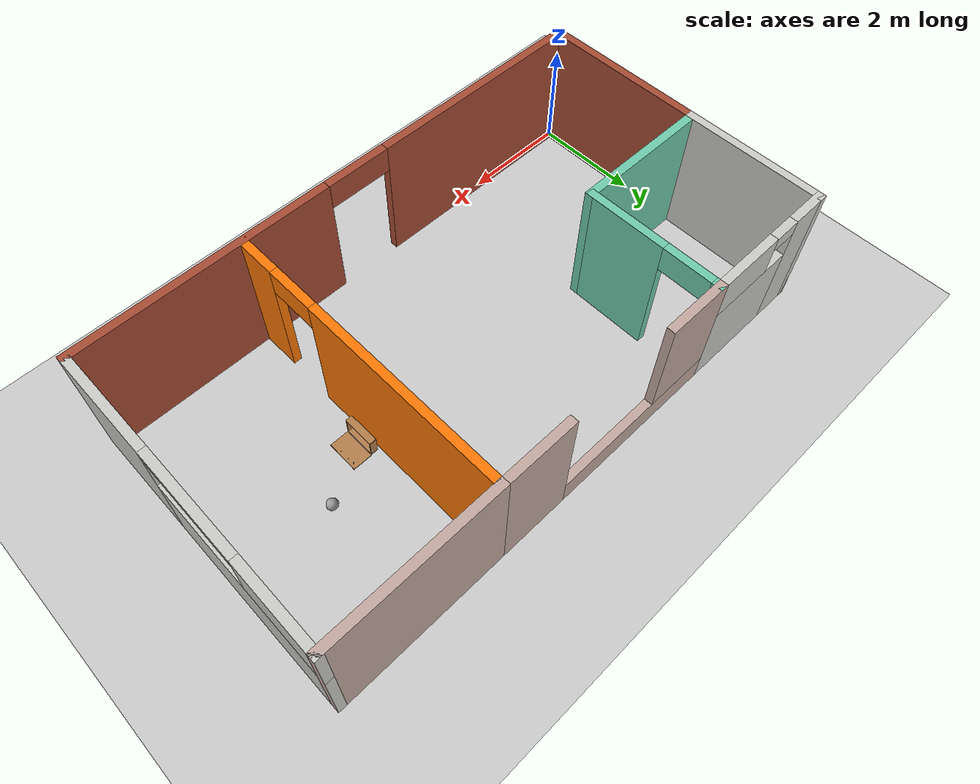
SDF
<sdf version="1.6">
 <world name="default">
  <model name="ground_plane">
   <static>1</static>
   <link name="link">
    <collision name="collision">
     <geometry><plane><normal>0 0 1</normal><size>100 100</size></plane></geometry>
     <surface><friction><ode><mu>100</mu><mu2>50</mu2></ode></friction></surface>
    </collision>
    <visual name="visual">
     <cast_shadows>0</cast_shadows>
     <geometry><plane><normal>0 0 1</normal><size>100 100</size></plane></geometry>
     <material>
      <script><uri>file://media/materials/scripts/gazebo.material</uri><name>Gazebo/Grey</name></script>
     </material>
    </visual>
   </link>
  </model>
  <model name="casa">
   <pose>5 2.75 0 0 -0 0</pose>
   <link name="Wall_29">
    <collision name="Wall_29_Collision">
     <geometry><box><size>3.15 0.15 2.5</size></box></geometry>
     <pose>0 0 1.25 0 -0 0</pose>
    </collision>
    <visual name="Wall_29_Visual">
     <pose>0 0 1.25 0 -0 0</pose>
     <geometry><box><size>3.15 0.15 2.5</size></box></geometry>
     <material>
      <script><uri>file://media/materials/scripts/gazebo.material</uri><name>Gazebo/Bricks</name></script>
      <ambient>1 1 1 1</ambient>
     </material>
     <meta><layer>0</layer></meta>
    </visual>
    <pose>-5 -1.25 0 0 -0 1.5708</pose>
   </link>
   <link name="Wall_31">
    <collision name="Wall_31_Collision">
     <geometry><box><size>2.65 0.15 2.5</size></box></geometry>
     <pose>0 0 1.25 0 -0 0</pose>
    </collision>
    <visual name="Wall_31_Visual">
     <pose>0 0 1.25 0 -0 0</pose>
     <geometry><box><size>2.65 0.15 2.5</size></box></geometry>
     <material>
      <script><uri>file://media/materials/scripts/gazebo.material</uri><name>Gazebo/CeilingTiled</name></script>
      <ambient>1 1 1 1</ambient>
     </material>
     <meta><layer>0</layer></meta>
    </visual>
    <pose>-5 1.5 0 0 -0 1.5708</pose>
   </link>
   <link name="Wall_33">
    <pose>-3.75 2.75 0 0 -0 0</pose>
    <visual name="Wall_33_Visual_0">
     <pose>-0.942604 0 1.25 0 -0 0</pose>
     <geometry><box><size>0.764791 0.15 2.5</size></box></geometry>
     <material>
      <script><uri>file://media/materials/scripts/gazebo.material</uri><name>Gazebo/CeilingTiled</name></script>
      <ambient>1 1 1 1</ambient>
     </material>
     <meta><layer>0</layer></meta>
    </visual>
    <collision name="Wall_33_Collision_0">
     <geometry><box><size>0.764791 0.15 2.5</size></box></geometry>
     <pose>-0.942604 0 1.25 0 -0 0</pose>
    </collision>
    <visual name="Wall_33_Visual_1">
     <pose>0.382396 0 0.85 0 -0 0</pose>
     <geometry><box><size>1.88521 0.15 1.7</size></box></geometry>
     <material>
      <script><uri>file://media/materials/scripts/gazebo.material</uri><name>Gazebo/CeilingTiled</name></script>
      <ambient>1 1 1 1</ambient>
     </material>
     <meta><layer>0</layer></meta>
    </visual>
    <collision name="Wall_33_Collision_1">
     <geometry><box><size>1.88521 0.15 1.7</size></box></geometry>
     <pose>0.382396 0 0.85 0 -0 0</pose>
    </collision>
    <visual name="Wall_33_Visual_2">
     <pose>0.632396 0 2.1 0 -0 0</pose>
     <geometry><box><size>1.38521 0.15 0.8</size></box></geometry>
     <material>
      <script><uri>file://media/materials/scripts/gazebo.material</uri><name>Gazebo/CeilingTiled</name></script>
      <ambient>1 1 1 1</ambient>
     </material>
     <meta><layer>0</layer></meta>
    </visual>
    <collision name="Wall_33_Collision_2">
     <geometry><box><size>1.38521 0.15 0.8</size></box></geometry>
     <pose>0.632396 0 2.1 0 -0 0</pose>
    </collision>
    <visual name="Wall_33_Visual_3">
     <pose>-0.310209 0 2.35 0 -0 0</pose>
     <geometry><box><size>0.5 0.15 0.3</size></box></geometry>
     <material>
      <script><uri>file://media/materials/scripts/gazebo.material</uri><name>Gazebo/CeilingTiled</name></script>
      <ambient>1 1 1 1</ambient>
     </material>
     <meta><layer>0</layer></meta>
    </visual>
    <collision name="Wall_33_Collision_3">
     <geometry><box><size>0.5 0.15 0.3</size></box></geometry>
     <pose>-0.310209 0 2.35 0 -0 0</pose>
    </collision>
   </link>
   <link name="Wall_35">
    <pose>-2.5 1.5 0 0 0 -1.5708</pose>
    <visual name="Wall_35_Visual_0">
     <pose>-1.22797 0 1.25 0 -0 0</pose>
     <geometry><box><size>0.194069 0.15 2.5</size></box></geometry>
     <material>
      <script><uri>file://media/materials/scripts/gazebo.material</uri><name>Gazebo/Grey</name></script>
      <ambient>0.435294 0.796078 0.67451 1</ambient>
     </material>
     <meta><layer>0</layer></meta>
    </visual>
    <collision name="Wall_35_Collision_0">
     <geometry><box><size>0.194069 0.15 2.5</size></box></geometry>
     <pose>-1.22797 0 1.25 0 -0 0</pose>
    </collision>
    <visual name="Wall_35_Visual_1">
     <pose>0.547034 0 1.25 0 -0 0</pose>
     <geometry><box><size>1.55593 0.15 2.5</size></box></geometry>
     <material>
      <script><uri>file://media/materials/scripts/gazebo.material</uri><name>Gazebo/Grey</name></script>
      <ambient>0.435294 0.796078 0.67451 1</ambient>
     </material>
     <meta><layer>0</layer></meta>
    </visual>
    <collision name="Wall_35_Collision_1">
     <geometry><box><size>1.55593 0.15 2.5</size></box></geometry>
     <pose>0.547034 0 1.25 0 -0 0</pose>
    </collision>
    <visual name="Wall_35_Visual_2">
     <pose>-0.680931 0 2.25 0 -0 0</pose>
     <geometry><box><size>0.9 0.15 0.5</size></box></geometry>
     <material>
      <script><uri>file://media/materials/scripts/gazebo.material</uri><name>Gazebo/Grey</name></script>
      <ambient>0.435294 0.796078 0.67451 1</ambient>
     </material>
     <meta><layer>0</layer></meta>
    </visual>
    <collision name="Wall_35_Collision_2">
     <geometry><box><size>0.9 0.15 0.5</size></box></geometry>
     <pose>-0.680931 0 2.25 0 -0 0</pose>
    </collision>
   </link>
   <link name="Wall_37">
    <collision name="Wall_37_Collision">
     <geometry><box><size>2.65 0.15 2.5</size></box></geometry>
     <pose>0 0 1.25 0 -0 0</pose>
    </collision>
    <visual name="Wall_37_Visual">
     <pose>0 0 1.25 0 -0 0</pose>
     <geometry><box><size>2.65 0.15 2.5</size></box></geometry>
     <material>
      <script><uri>file://media/materials/scripts/gazebo.material</uri><name>Gazebo/Grey</name></script>
      <ambient>0.435294 0.796078 0.67451 1</ambient>
     </material>
     <meta><layer>0</layer></meta>
    </visual>
    <pose>-3.75 0.25 0 0 -0 0</pose>
   </link>
   <link name="Wall_39">
    <pose>0 -2.75 0 0 -0 0</pose>
    <visual name="Wall_39_Visual_0">
     <pose>-2.95244 0 1.25 0 -0 0</pose>
     <geometry><box><size>4.24512 0.15 2.5</size></box></geometry>
     <material>
      <script><uri>file://media/materials/scripts/gazebo.material</uri><name>Gazebo/Bricks</name></script>
      <ambient>1 1 1 1</ambient>
     </material>
     <meta><layer>0</layer></meta>
    </visual>
    <collision name="Wall_39_Collision_0">
     <geometry><box><size>4.24512 0.15 2.5</size></box></geometry>
     <pose>-2.95244 0 1.25 0 -0 0</pose>
    </collision>
    <visual name="Wall_39_Visual_1">
     <pose>2.72256 0 1.25 0 -0 0</pose>
     <geometry><box><size>4.70488 0.15 2.5</size></box></geometry>
     <material>
      <script><uri>file://media/materials/scripts/gazebo.material</uri><name>Gazebo/Bricks</name></script>
      <ambient>1 1 1 1</ambient>
     </material>
     <meta><layer>0</layer></meta>
    </visual>
    <collision name="Wall_39_Collision_1">
     <geometry><box><size>4.70488 0.15 2.5</size></box></geometry>
     <pose>2.72256 0 1.25 0 -0 0</pose>
    </collision>
    <visual name="Wall_39_Visual_2">
     <pose>-0.229885 0 2.25 0 -0 0</pose>
     <geometry><box><size>1.2 0.15 0.5</size></box></geometry>
     <material>
      <script><uri>file://media/materials/scripts/gazebo.material</uri><name>Gazebo/Bricks</name></script>
      <ambient>1 1 1 1</ambient>
     </material>
     <meta><layer>0</layer></meta>
    </visual>
    <collision name="Wall_39_Collision_2">
     <geometry><box><size>1.2 0.15 0.5</size></box></geometry>
     <pose>-0.229885 0 2.25 0 -0 0</pose>
    </collision>
   </link>
   <link name="Wall_41">
    <pose>5 0 0 0 -0 1.5708</pose>
    <visual name="Wall_41_Visual_0">
     <pose>-1.81897 0 1.25 0 -0 0</pose>
     <geometry><box><size>2.01206 0.15 2.5</size></box></geometry>
     <material>
      <script><uri>file://media/materials/scripts/gazebo.material</uri><name>Gazebo/CeilingTiled</name></script>
      <ambient>1 1 1 1</ambient>
     </material>
     <meta><layer>0</layer></meta>
    </visual>
    <collision name="Wall_41_Collision_0">
     <geometry><box><size>2.01206 0.15 2.5</size></box></geometry>
     <pose>-1.81897 0 1.25 0 -0 0</pose>
    </collision>
    <visual name="Wall_41_Visual_1">
     <pose>1.00603 0 0.75 0 -0 0</pose>
     <geometry><box><size>3.63794 0.15 1.5</size></box></geometry>
     <material>
      <script><uri>file://media/materials/scripts/gazebo.material</uri><name>Gazebo/CeilingTiled</name></script>
      <ambient>1 1 1 1</ambient>
     </material>
     <meta><layer>0</layer></meta>
    </visual>
    <collision name="Wall_41_Collision_1">
     <geometry><box><size>3.63794 0.15 1.5</size></box></geometry>
     <pose>1.00603 0 0.75 0 -0 0</pose>
    </collision>
    <visual name="Wall_41_Visual_2">
     <pose>2.00603 0 2 0 -0 0</pose>
     <geometry><box><size>1.63794 0.15 1</size></box></geometry>
     <material>
      <script><uri>file://media/materials/scripts/gazebo.material</uri><name>Gazebo/CeilingTiled</name></script>
      <ambient>1 1 1 1</ambient>
     </material>
     <meta><layer>0</layer></meta>
    </visual>
    <collision name="Wall_41_Collision_2">
     <geometry><box><size>1.63794 0.15 1</size></box></geometry>
     <pose>2.00603 0 2 0 -0 0</pose>
    </collision>
    <visual name="Wall_41_Visual_3">
     <pose>0.187064 0 2.4 0 -0 0</pose>
     <geometry><box><size>2 0.15 0.2</size></box></geometry>
     <material>
      <script><uri>file://media/materials/scripts/gazebo.material</uri><name>Gazebo/CeilingTiled</name></script>
      <ambient>1 1 1 1</ambient>
     </material>
     <meta><layer>0</layer></meta>
    </visual>
    <collision name="Wall_41_Collision_3">
     <geometry><box><size>2 0.15 0.2</size></box></geometry>
     <pose>0.187064 0 2.4 0 -0 0</pose>
    </collision>
   </link>
   <link name="Wall_43">
    <collision name="Wall_43_Collision">
     <geometry><box><size>3.15 0.15 2.5</size></box></geometry>
     <pose>0 0 1.25 0 -0 0</pose>
    </collision>
    <visual name="Wall_43_Visual">
     <pose>0 0 1.25 0 -0 0</pose>
     <geometry><box><size>3.15 0.15 2.5</size></box></geometry>
     <material>
      <script><uri>file://media/materials/scripts/gazebo.material</uri><name>Gazebo/Grey</name></script>
      <ambient>0.760784 0.662745 0.627451 1</ambient>
     </material>
     <meta><layer>0</layer></meta>
    </visual>
    <pose>3.5 2.75 0 0 -0 3.14159</pose>
   </link>
   <link name="Wall_45">
    <pose>-0.25 2.75 0 0 -0 3.14159</pose>
    <visual name="Wall_45_Visual_0">
     <pose>-1.61134 0 1.25 0 -0 0</pose>
     <geometry><box><size>1.42731 0.15 2.5</size></box></geometry>
     <material>
      <script><uri>file://media/materials/scripts/gazebo.material</uri><name>Gazebo/Grey</name></script>
      <ambient>0.760784 0.662745 0.627451 1</ambient>
     </material>
     <meta><layer>0</layer></meta>
    </visual>
    <collision name="Wall_45_Collision_0">
     <geometry><box><size>1.42731 0.15 2.5</size></box></geometry>
     <pose>-1.61134 0 1.25 0 -0 0</pose>
    </collision>
    <visual name="Wall_45_Visual_1">
     <pose>0.713658 0 0.25 0 -0 0</pose>
     <geometry><box><size>3.22268 0.15 0.5</size></box></geometry>
     <material>
      <script><uri>file://media/materials/scripts/gazebo.material</uri><name>Gazebo/Grey</name></script>
      <ambient>0.760784 0.662745 0.627451 1</ambient>
     </material>
     <meta><layer>0</layer></meta>
    </visual>
    <collision name="Wall_45_Collision_1">
     <geometry><box><size>3.22268 0.15 0.5</size></box></geometry>
     <pose>0.713658 0 0.25 0 -0 0</pose>
    </collision>
    <visual name="Wall_45_Visual_2">
     <pose>1.71366 0 1.5 0 -0 0</pose>
     <geometry><box><size>1.22269 0.15 2</size></box></geometry>
     <material>
      <script><uri>file://media/materials/scripts/gazebo.material</uri><name>Gazebo/Grey</name></script>
      <ambient>0.760784 0.662745 0.627451 1</ambient>
     </material>
     <meta><layer>0</layer></meta>
    </visual>
    <collision name="Wall_45_Collision_2">
     <geometry><box><size>1.22269 0.15 2</size></box></geometry>
     <pose>1.71366 0 1.5 0 -0 0</pose>
    </collision>
   </link>
   <link name="Wall_48">
    <pose>2 0 0 0 -0 1.5708</pose>
    <visual name="Wall_48_Visual_0">
     <pose>-2.40098 0 1.25 0 -0 0</pose>
     <geometry><box><size>0.848038 0.15 2.5</size></box></geometry>
     <material>
      <script><uri>file://media/materials/scripts/gazebo.material</uri><name>Gazebo/Grey</name></script>
      <ambient>0.996078 0.47451 0.0196078 1</ambient>
     </material>
     <meta><layer>0</layer></meta>
    </visual>
    <collision name="Wall_48_Collision_0">
     <geometry><box><size>0.848038 0.15 2.5</size></box></geometry>
     <pose>-2.40098 0 1.25 0 -0 0</pose>
    </collision>
    <visual name="Wall_48_Visual_1">
     <pose>0.874019 0 1.25 0 -0 0</pose>
     <geometry><box><size>3.90196 0.15 2.5</size></box></geometry>
     <material>
      <script><uri>file://media/materials/scripts/gazebo.material</uri><name>Gazebo/Grey</name></script>
      <ambient>0.996078 0.47451 0.0196078 1</ambient>
     </material>
     <meta><layer>0</layer></meta>
    </visual>
    <collision name="Wall_48_Collision_1">
     <geometry><box><size>3.90196 0.15 2.5</size></box></geometry>
     <pose>0.874019 0 1.25 0 -0 0</pose>
    </collision>
    <visual name="Wall_48_Visual_2">
     <pose>-1.52696 0 2.25 0 -0 0</pose>
     <geometry><box><size>0.9 0.15 0.5</size></box></geometry>
     <material>
      <script><uri>file://media/materials/scripts/gazebo.material</uri><name>Gazebo/Grey</name></script>
      <ambient>0.996078 0.47451 0.0196078 1</ambient>
     </material>
     <meta><layer>0</layer></meta>
    </visual>
    <collision name="Wall_48_Collision_2">
     <geometry><box><size>0.9 0.15 0.5</size></box></geometry>
     <pose>-1.52696 0 2.25 0 -0 0</pose>
    </collision>
   </link>
   <static>1</static>
  </model>
  <model name="my_ball">
   <link name="link_0">
    <inertial>
     <mass>1</mass>
     <inertia><ixx>0.1</ixx><ixy>0</ixy><ixz>0</ixz><iyy>0.1</iyy><iyz>0</iyz><izz>0.1</izz></inertia>
    </inertial>
    <visual name="visual">
     <geometry><sphere><radius>0.1</radius></sphere></geometry>
     <material>
      <lighting>1</lighting>
      <script><uri>file://media/materials/scripts/gazebo.material</uri><name>Gazebo/Grey</name></script>
      <shader type="pixel"><normal_map>__default__</normal_map></shader>
      <ambient>1 1 1 1</ambient>
      <diffuse>1 1 1 1</diffuse>
      <specular>1 1 1 1</specular>
      <emissive>0 0 0 1</emissive>
     </material>
    </visual>
    <collision name="collision">
     <geometry><sphere><radius>0.1</radius></sphere></geometry>
     <surface>
      <friction>
       <ode><mu>1</mu><mu2>1</mu2><fdir1>0 0 0</fdir1><slip1>0</slip1><slip2>0</slip2></ode>
       <torsional>
        <coefficient>1</coefficient>
        <patch_radius>0</patch_radius>
        <surface_radius>0</surface_radius>
        <use_patch_radius>1</use_patch_radius>
        <ode><slip>0</slip></ode>
       </torsional>
      </friction>
      <bounce><restitution_coefficient>0</restitution_coefficient><threshold>1e+06</threshold></bounce>
      <contact>
       <collide_without_contact>0</collide_without_contact>
       <collide_without_contact_bitmask>1</collide_without_contact_bitmask>
       <collide_bitmask>1</collide_bitmask>
       <ode>
        <soft_cfm>0</soft_cfm>
        <soft_erp>0.2</soft_erp>
        <kp>1e+13</kp>
        <kd>1</kd>
        <max_vel>0.01</max_vel>
        <min_depth>0</min_depth>
       </ode>
       <bullet>
        <split_impulse>1</split_impulse>
        <split_impulse_penetration_threshold>-0.01</split_impulse_penetration_threshold>
        <soft_cfm>0</soft_cfm>
        <soft_erp>0.2</soft_erp>
        <kp>1e+13</kp>
        <kd>1</kd>
       </bullet>
      </contact>
     </surface>
    </collision>
   </link>
   <static>0</static>
   <pose>8.24873 3.22459 0.1 0 -0 0</pose>
  </model>
  <model name="cabinet">
   <static>1</static>
   <link name="cabinet_bottom_plate">
    <inertial>
     <pose>0 0 -1 0 -0 0</pose>
     <inertia><ixx>2.05</ixx><ixy>0</ixy><ixz>0</ixz><iyy>2.05</iyy><iyz>0</iyz><izz>2.05</izz></inertia>
     <mass>25</mass>
    </inertial>
    <collision name="cabinet_bottom_plate_geom">
     <pose>0 0 0.01 0 -0 0</pose>
     <geometry><box><size>0.45 0.45 0.02</size></box></geometry>
    </collision>
    <visual name="cabinet_bottom_plate_geom_visual">
     <pose>0 0 0.01 0 -0 0</pose>
     <geometry><box><size>0.45 0.45 0.02</size></box></geometry>
     <material>
      <script><uri>file://media/materials/scripts/gazebo.material</uri><name>Gazebo/Wood</name></script>
     </material>
    </visual>
    <collision name="cabinet_bottom_plate_geom_cabinet_back_plate">
     <pose>0.235 0 0.51 0 -0 0</pose>
     <geometry><box><size>0.02 0.45 1.02</size></box></geometry>
    </collision>
    <visual name="cabinet_bottom_plate_geom_cabinet_back_plate_visual">
     <pose>0.235 0 0.51 0 -0 0</pose>
     <geometry><box><size>0.02 0.45 1.02</size></box></geometry>
     <material>
      <script><uri>file://media/materials/scripts/gazebo.material</uri><name>Gazebo/Wood</name></script>
     </material>
    </visual>
    <collision name="cabinet_bottom_plate_geom_cabinet_left_plate">
     <pose>0 0.235 0.51 0 -0 0</pose>
     <geometry><box><size>0.45 0.02 1.02</size></box></geometry>
    </collision>
    <visual name="cabinet_bottom_plate_geom_cabinet_left_plate_visual">
     <pose>0 0.235 0.51 0 -0 0</pose>
     <geometry><box><size>0.45 0.02 1.02</size></box></geometry>
     <material>
      <script><uri>file://media/materials/scripts/gazebo.material</uri><name>Gazebo/Wood</name></script>
     </material>
    </visual>
    <collision name="cabinet_bottom_plate_geom_cabinet_middle_plate">
     <pose>0 0 0.51 0 -0 0</pose>
     <geometry><box><size>0.45 0.45 0.02</size></box></geometry>
    </collision>
    <visual name="cabinet_bottom_plate_geom_cabinet_middle_plate_visual">
     <pose>0 0 0.51 0 -0 0</pose>
     <geometry><box><size>0.45 0.45 0.02</size></box></geometry>
     <material>
      <script><uri>file://media/materials/scripts/gazebo.material</uri><name>Gazebo/Wood</name></script>
     </material>
    </visual>
    <collision name="cabinet_bottom_plate_geom_cabinet_right_plate">
     <pose>0 -0.235 0.51 0 -0 0</pose>
     <geometry><box><size>0.45 0.02 1.02</size></box></geometry>
    </collision>
    <visual name="cabinet_bottom_plate_geom_cabinet_right_plate_visual">
     <pose>0 -0.235 0.51 0 -0 0</pose>
     <geometry><box><size>0.45 0.02 1.02</size></box></geometry>
     <material>
      <script><uri>file://media/materials/scripts/gazebo.material</uri><name>Gazebo/Wood</name></script>
     </material>
    </visual>
    <collision name="cabinet_bottom_plate_geom_cabinet_top_plate">
     <pose>0 0 1.01 0 -0 0</pose>
     <geometry><box><size>0.45 0.45 0.02</size></box></geometry>
    </collision>
    <visual name="cabinet_bottom_plate_geom_cabinet_top_plate_visual">
     <pose>0 0 1.01 0 -0 0</pose>
     <geometry><box><size>0.45 0.45 0.02</size></box></geometry>
     <material>
      <script><uri>file://media/materials/scripts/gazebo.material</uri><name>Gazebo/Wood</name></script>
     </material>
    </visual>
   </link>
   <pose>6.62812 2.40841 0 0 -0 0</pose>
  </model>
  <model name="cabinet_0">
   <static>1</static>
   <link name="cabinet_bottom_plate">
    <inertial>
     <pose>0 0 -1 0 -0 0</pose>
     <inertia><ixx>2.05</ixx><ixy>0</ixy><ixz>0</ixz><iyy>2.05</iyy><iyz>0</iyz><izz>2.05</izz></inertia>
     <mass>25</mass>
    </inertial>
    <collision name="cabinet_bottom_plate_geom">
     <pose>0 0 0.01 0 -0 0</pose>
     <geometry><box><size>0.45 0.45 0.02</size></box></geometry>
    </collision>
    <visual name="cabinet_bottom_plate_geom_visual">
     <pose>0 0 0.01 0 -0 0</pose>
     <geometry><box><size>0.45 0.45 0.02</size></box></geometry>
     <material>
      <script><uri>file://media/materials/scripts/gazebo.material</uri><name>Gazebo/Wood</name></script>
     </material>
    </visual>
    <collision name="cabinet_bottom_plate_geom_cabinet_back_plate">
     <pose>0.235 0 0.51 0 -0 0</pose>
     <geometry><box><size>0.02 0.45 1.02</size></box></geometry>
    </collision>
    <visual name="cabinet_bottom_plate_geom_cabinet_back_plate_visual">
     <pose>0.235 0 0.51 0 -0 0</pose>
     <geometry><box><size>0.02 0.45 1.02</size></box></geometry>
     <material>
      <script><uri>file://media/materials/scripts/gazebo.material</uri><name>Gazebo/Wood</name></script>
     </material>
    </visual>
    <collision name="cabinet_bottom_plate_geom_cabinet_left_plate">
     <pose>0 0.235 0.51 0 -0 0</pose>
     <geometry><box><size>0.45 0.02 1.02</size></box></geometry>
    </collision>
    <visual name="cabinet_bottom_plate_geom_cabinet_left_plate_visual">
     <pose>0 0.235 0.51 0 -0 0</pose>
     <geometry><box><size>0.45 0.02 1.02</size></box></geometry>
     <material>
      <script><uri>file://media/materials/scripts/gazebo.material</uri><name>Gazebo/Wood</name></script>
     </material>
    </visual>
    <collision name="cabinet_bottom_plate_geom_cabinet_middle_plate">
     <pose>0 0 0.51 0 -0 0</pose>
     <geometry><box><size>0.45 0.45 0.02</size></box></geometry>
    </collision>
    <visual name="cabinet_bottom_plate_geom_cabinet_middle_plate_visual">
     <pose>0 0 0.51 0 -0 0</pose>
     <geometry><box><size>0.45 0.45 0.02</size></box></geometry>
     <material>
      <script><uri>file://media/materials/scripts/gazebo.material</uri><name>Gazebo/Wood</name></script>
     </material>
    </visual>
    <collision name="cabinet_bottom_plate_geom_cabinet_right_plate">
     <pose>0 -0.235 0.51 0 -0 0</pose>
     <geometry><box><size>0.45 0.02 1.02</size></box></geometry>
    </collision>
    <visual name="cabinet_bottom_plate_geom_cabinet_right_plate_visual">
     <pose>0 -0.235 0.51 0 -0 0</pose>
     <geometry><box><size>0.45 0.02 1.02</size></box></geometry>
     <material>
      <script><uri>file://media/materials/scripts/gazebo.material</uri><name>Gazebo/Wood</name></script>
     </material>
    </visual>
    <collision name="cabinet_bottom_plate_geom_cabinet_top_plate">
     <pose>0 0 1.01 0 -0 0</pose>
     <geometry><box><size>0.45 0.45 0.02</size></box></geometry>
    </collision>
    <visual name="cabinet_bottom_plate_geom_cabinet_top_plate_visual">
     <pose>0 0 1.01 0 -0 0</pose>
     <geometry><box><size>0.45 0.45 0.02</size></box></geometry>
     <material>
      <script><uri>file://media/materials/scripts/gazebo.material</uri><name>Gazebo/Wood</name></script>
     </material>
    </visual>
   </link>
   <pose>6.66535 4.39729 0 0 -0 0</pose>
  </model>
  <model name="wooden_case_metal_peg">
   <link name="wooden_case::base">
    <pose>0 0 0.024 0 -0 0</pose>
    <inertial>
     <pose>-0.022184 0 0.171592 0 -0 0</pose>
     <mass>3.96264</mass>
     <inertia>
      <ixx>0.213536</ixx>
      <ixy>0</ixy>
      <ixz>0.000779377</ixz>
      <iyy>0.0708943</iyy>
      <iyz>0</iyz>
      <izz>0.154604</izz>
     </inertia>
    </inertial>
    <collision name="collision_back">
     <pose>-0.053975 0 0.1778 0 -0 0</pose>
     <geometry><box><size>0.01905 0.5461 0.3175</size></box></geometry>
     <surface>
      <contact>
       <poissons_ratio>0.347</poissons_ratio>
       <elastic_modulus>8.8e+09</elastic_modulus>
       <ode><kp>100000</kp><kd>100</kd><max_vel>100</max_vel><min_depth>0.001</min_depth></ode>
      </contact>
      <friction>
       <torsional>
        <coefficient>1</coefficient>
        <use_patch_radius>0</use_patch_radius>
        <surface_radius>0.01</surface_radius>
       </torsional>
      </friction>
     </surface>
    </collision>
    <visual name="visual_back">
     <pose>-0.053975 0 0.1778 0 -0 0</pose>
     <geometry><box><size>0.01905 0.5461 0.3175</size></box></geometry>
     <material>
      <script><uri>file://media/materials/scripts/gazebo.material</uri><name>Gazebo/Wood</name></script>
     </material>
    </visual>
    <collision name="collision_bottom">
     <pose>0 0 0.009525 0 -0 0</pose>
     <geometry><box><size>0.127 0.5842 0.01905</size></box></geometry>
     <surface>
      <contact>
       <poissons_ratio>0.347</poissons_ratio>
       <elastic_modulus>8.8e+09</elastic_modulus>
       <ode><kp>100000</kp><kd>100</kd><max_vel>100</max_vel><min_depth>0.001</min_depth></ode>
      </contact>
      <friction>
       <torsional>
        <coefficient>1</coefficient>
        <use_patch_radius>0</use_patch_radius>
        <surface_radius>0.01</surface_radius>
       </torsional>
      </friction>
     </surface>
    </collision>
    <visual name="visual_bottom">
     <pose>0 0 0.009525 0 -0 0</pose>
     <geometry><box><size>0.127 0.5842 0.01905</size></box></geometry>
     <material>
      <script><uri>file://media/materials/scripts/gazebo.material</uri><name>Gazebo/Wood</name></script>
     </material>
    </visual>
    <collision name="collision_top">
     <pose>0 0 0.346075 0 -0 0</pose>
     <geometry><box><size>0.127 0.5842 0.01905</size></box></geometry>
     <surface>
      <contact>
       <poissons_ratio>0.347</poissons_ratio>
       <elastic_modulus>8.8e+09</elastic_modulus>
       <ode><kp>100000</kp><kd>100</kd><max_vel>100</max_vel><min_depth>0.001</min_depth></ode>
      </contact>
      <friction>
       <torsional>
        <coefficient>1</coefficient>
        <use_patch_radius>0</use_patch_radius>
        <surface_radius>0.01</surface_radius>
       </torsional>
      </friction>
     </surface>
    </collision>
    <visual name="visual_top">
     <pose>0 0 0.346075 0 -0 0</pose>
     <geometry><box><size>0.127 0.5842 0.01905</size></box></geometry>
     <material>
      <script><uri>file://media/materials/scripts/gazebo.material</uri><name>Gazebo/Wood</name></script>
     </material>
    </visual>
    <collision name="collision_left">
     <pose>0 -0.282575 0.1778 0 -0 0</pose>
     <geometry><box><size>0.127 0.01905 0.3175</size></box></geometry>
     <surface>
      <contact>
       <poissons_ratio>0.347</poissons_ratio>
       <elastic_modulus>8.8e+09</elastic_modulus>
       <ode><kp>100000</kp><kd>100</kd><max_vel>100</max_vel><min_depth>0.001</min_depth></ode>
      </contact>
      <friction>
       <torsional>
        <coefficient>1</coefficient>
        <use_patch_radius>0</use_patch_radius>
        <surface_radius>0.01</surface_radius>
       </torsional>
      </friction>
     </surface>
    </collision>
    <visual name="visual_left">
     <pose>0 -0.282575 0.1778 0 -0 0</pose>
     <geometry><box><size>0.127 0.01905 0.3175</size></box></geometry>
     <material>
      <script><uri>file://media/materials/scripts/gazebo.material</uri><name>Gazebo/Wood</name></script>
     </material>
    </visual>
    <collision name="collision_right">
     <pose>0 0.282575 0.1778 0 -0 0</pose>
     <geometry><box><size>0.127 0.01905 0.3175</size></box></geometry>
     <surface>
      <contact>
       <poissons_ratio>0.347</poissons_ratio>
       <elastic_modulus>8.8e+09</elastic_modulus>
       <ode><kp>100000</kp><kd>100</kd><max_vel>100</max_vel><min_depth>0.001</min_depth></ode>
      </contact>
      <friction>
       <torsional>
        <coefficient>1</coefficient>
        <use_patch_radius>0</use_patch_radius>
        <surface_radius>0.01</surface_radius>
       </torsional>
      </friction>
     </surface>
    </collision>
    <visual name="visual_right">
     <pose>0 0.282575 0.1778 0 -0 0</pose>
     <geometry><box><size>0.127 0.01905 0.3175</size></box></geometry>
     <material>
      <script><uri>file://media/materials/scripts/gazebo.material</uri><name>Gazebo/Wood</name></script>
     </material>
    </visual>
    <collision name="collision_block_left">
     <pose>0.0095 -0.2151 -0.012 0 -0 0</pose>
     <geometry><box><size>0.108 0.05 0.024</size></box></geometry>
     <surface>
      <contact>
       <poissons_ratio>0.347</poissons_ratio>
       <elastic_modulus>8.8e+09</elastic_modulus>
       <ode><kp>100000</kp><kd>100</kd><max_vel>100</max_vel><min_depth>0.001</min_depth></ode>
      </contact>
      <friction>
       <torsional>
        <coefficient>1</coefficient>
        <use_patch_radius>0</use_patch_radius>
        <surface_radius>0.01</surface_radius>
       </torsional>
      </friction>
     </surface>
    </collision>
    <visual name="visual_block_left">
     <pose>0.0095 -0.2151 -0.012 0 -0 0</pose>
     <geometry><box><size>0.108 0.05 0.024</size></box></geometry>
     <material>
      <script><uri>file://media/materials/scripts/gazebo.material</uri><name>Gazebo/Wood</name></script>
     </material>
    </visual>
    <collision name="collision_block_right">
     <pose>0.0095 0.2151 -0.012 0 -0 0</pose>
     <geometry><box><size>0.108 0.05 0.024</size></box></geometry>
     <surface>
      <contact>
       <poissons_ratio>0.347</poissons_ratio>
       <elastic_modulus>8.8e+09</elastic_modulus>
       <ode><kp>100000</kp><kd>100</kd><max_vel>100</max_vel><min_depth>0.001</min_depth></ode>
      </contact>
      <friction>
       <torsional>
        <coefficient>1</coefficient>
        <use_patch_radius>0</use_patch_radius>
        <surface_radius>0.01</surface_radius>
       </torsional>
      </friction>
     </surface>
    </collision>
    <visual name="visual_block_right">
     <pose>0.0095 0.2151 -0.012 0 -0 0</pose>
     <geometry><box><size>0.108 0.05 0.024</size></box></geometry>
     <material>
      <script><uri>file://media/materials/scripts/gazebo.material</uri><name>Gazebo/Wood</name></script>
     </material>
    </visual>
   </link>
   <link name="wooden_case::lid">
    <pose>0.243775 0 0.009525 0 -0 0</pose>
    <inertial>
     <mass>1.97874</mass>
     <inertia>
      <ixx>0.0563367</ixx>
      <ixy>0</ixy>
      <ixz>0</ixz>
      <iyy>0.020911</iyy>
      <iyz>0</iyz>
      <izz>0.0771281</izz>
     </inertia>
    </inertial>
    <collision name="collision">
     <geometry><box><size>0.3556 0.5842 0.01905</size></box></geometry>
     <surface>
      <contact>
       <poissons_ratio>0.347</poissons_ratio>
       <elastic_modulus>8.8e+09</elastic_modulus>
       <ode><kp>100000</kp><kd>100</kd><max_vel>100</max_vel><min_depth>0.001</min_depth></ode>
      </contact>
      <friction>
       <torsional>
        <coefficient>1</coefficient>
        <use_patch_radius>0</use_patch_radius>
        <surface_radius>0.01</surface_radius>
       </torsional>
      </friction>
     </surface>
    </collision>
    <visual name="visual">
     <geometry><box><size>0.3556 0.5842 0.01905</size></box></geometry>
     <material>
      <script><uri>file://media/materials/scripts/gazebo.material</uri><name>Gazebo/Wood</name></script>
     </material>
    </visual>
    <visual name="tee_nut_1">
     <pose>0.122 -0.216 0 0 -0 0</pose>
     <geometry><cylinder><radius>0.00635</radius><length>0.0192405</length></cylinder></geometry>
     <material>
      <script><uri>file://media/materials/scripts/gazebo.material</uri><name>Gazebo/Grey</name></script>
     </material>
    </visual>
    <visual name="tee_nut_2">
     <pose>0.122 -0.088 0 0 -0 0</pose>
     <geometry><cylinder><radius>0.00635</radius><length>0.0192405</length></cylinder></geometry>
     <material>
      <script><uri>file://media/materials/scripts/gazebo.material</uri><name>Gazebo/Grey</name></script>
     </material>
    </visual>
    <visual name="tee_nut_3">
     <pose>0.122 0.088 0 0 -0 0</pose>
     <geometry><cylinder><radius>0.00635</radius><length>0.0192405</length></cylinder></geometry>
     <material>
      <script><uri>file://media/materials/scripts/gazebo.material</uri><name>Gazebo/Grey</name></script>
     </material>
    </visual>
    <visual name="tee_nut_4">
     <pose>0.122 0.216 0 0 -0 0</pose>
     <geometry><cylinder><radius>0.00635</radius><length>0.0192405</length></cylinder></geometry>
     <material>
      <script><uri>file://media/materials/scripts/gazebo.material</uri><name>Gazebo/Grey</name></script>
     </material>
    </visual>
   </link>
   <joint name="wooden_case::lid_hinge" type="revolute">
    <pose>-0.1778 0 0.01905 0 -0 0</pose>
    <parent>wooden_case::base</parent>
    <child>wooden_case::lid</child>
    <axis>
     <xyz>0 1 0</xyz>
     <limit><upper>0.523599</upper><lower>-1.5708</lower></limit>
     <use_parent_model_frame>0</use_parent_model_frame>
     <dynamics><spring_reference>0</spring_reference><spring_stiffness>0</spring_stiffness></dynamics>
    </axis>
   </joint>
   <link name="peg::link">
    <pose>0.365774 0.216 0.05005 0 -0 0</pose>
    <inertial>
     <mass>0.0121</mass>
     <inertia>
      <ixx>3.90898e-06</ixx>
      <ixy>0</ixy>
      <ixz>0</ixz>
      <iyy>3.90898e-06</iyy>
      <iyz>0</iyz>
      <izz>6.58845e-08</izz>
     </inertia>
    </inertial>
    <collision name="collision">
     <geometry><cylinder><radius>0.0033</radius><length>0.062</length></cylinder></geometry>
     <surface>
      <contact>
       <poissons_ratio>0.305</poissons_ratio>
       <elastic_modulus>2e+11</elastic_modulus>
       <ode><kp>100000</kp><kd>100</kd><max_vel>100</max_vel><min_depth>0.001</min_depth></ode>
      </contact>
      <friction>
       <torsional>
        <coefficient>1</coefficient>
        <use_patch_radius>0</use_patch_radius>
        <surface_radius>0.01</surface_radius>
       </torsional>
      </friction>
     </surface>
    </collision>
    <visual name="visual">
     <geometry><cylinder><radius>0.0033</radius><length>0.062</length></cylinder></geometry>
     <material>
      <script><uri>file://media/materials/scripts/gazebo.material</uri><name>Gazebo/Grey</name></script>
     </material>
    </visual>
   </link>
   <joint name="case_peg" type="revolute">
    <child>peg::link</child>
    <parent>wooden_case::lid</parent>
    <axis>
     <xyz>0 0 1</xyz>
     <limit><upper>0</upper><lower>0</lower></limit>
     <use_parent_model_frame>0</use_parent_model_frame>
     <dynamics><spring_reference>0</spring_reference><spring_stiffness>0</spring_stiffness></dynamics>
    </axis>
   </joint>
   <pose>7.19592 2.68233 -0.001057 0 -0.000427 1e-06</pose>
  </model>
 </world>
</sdf>
